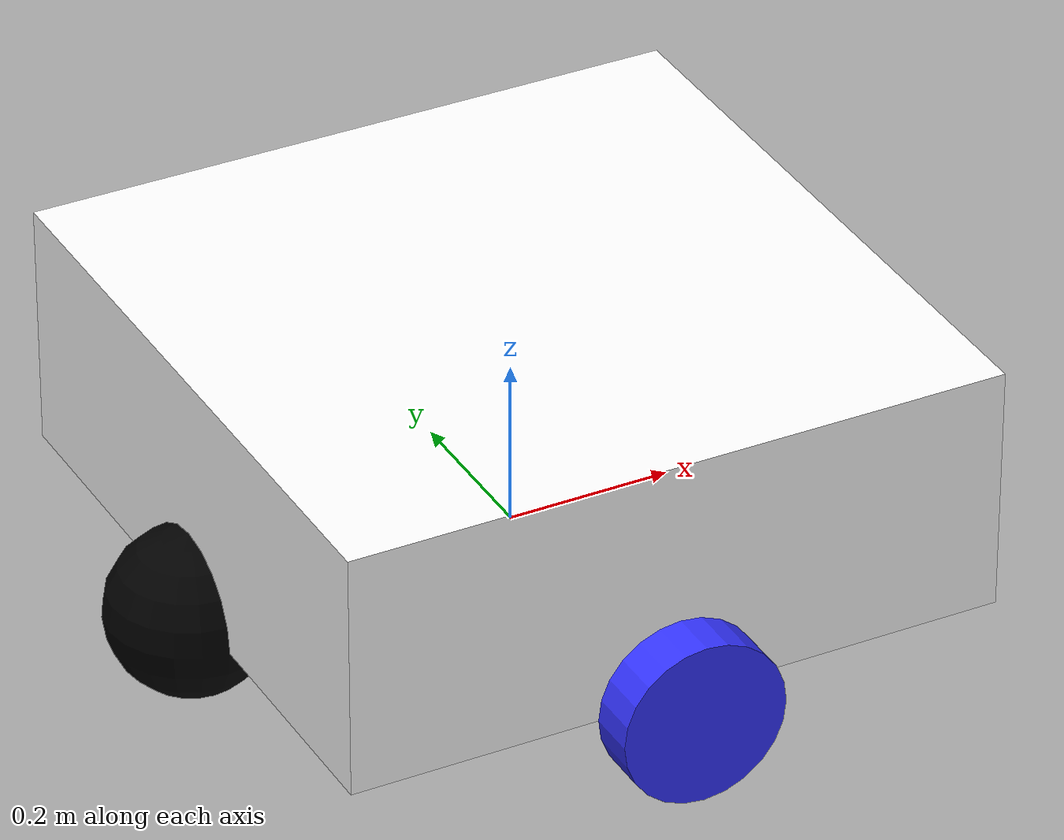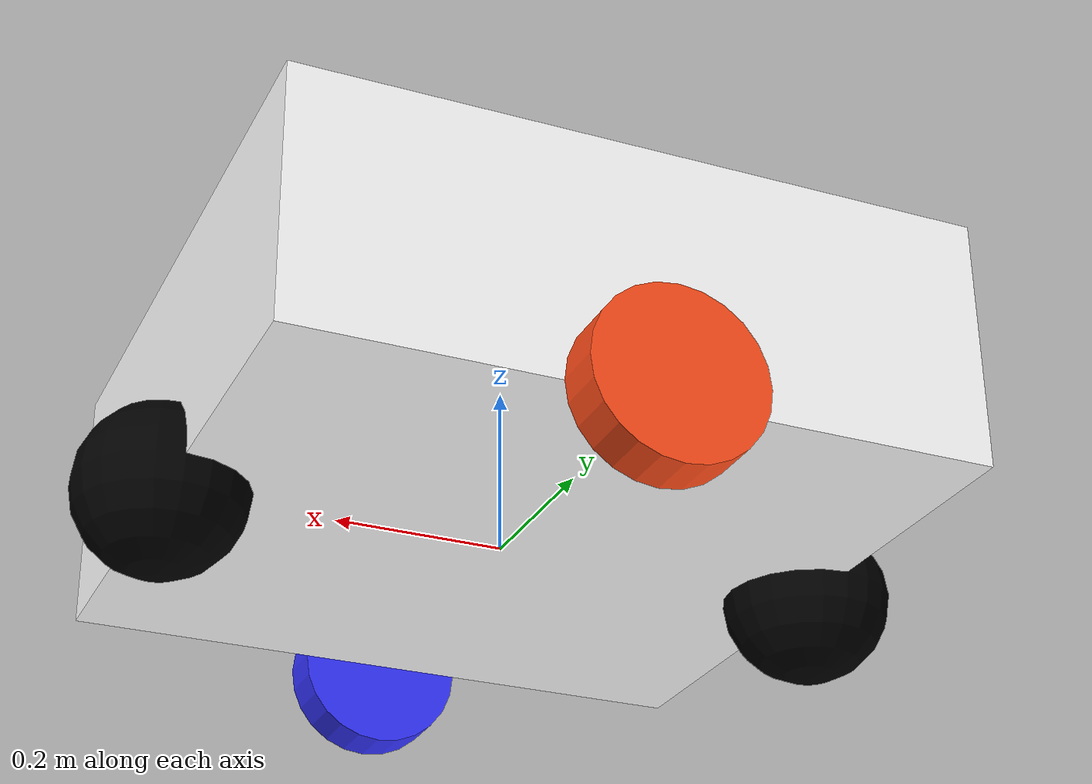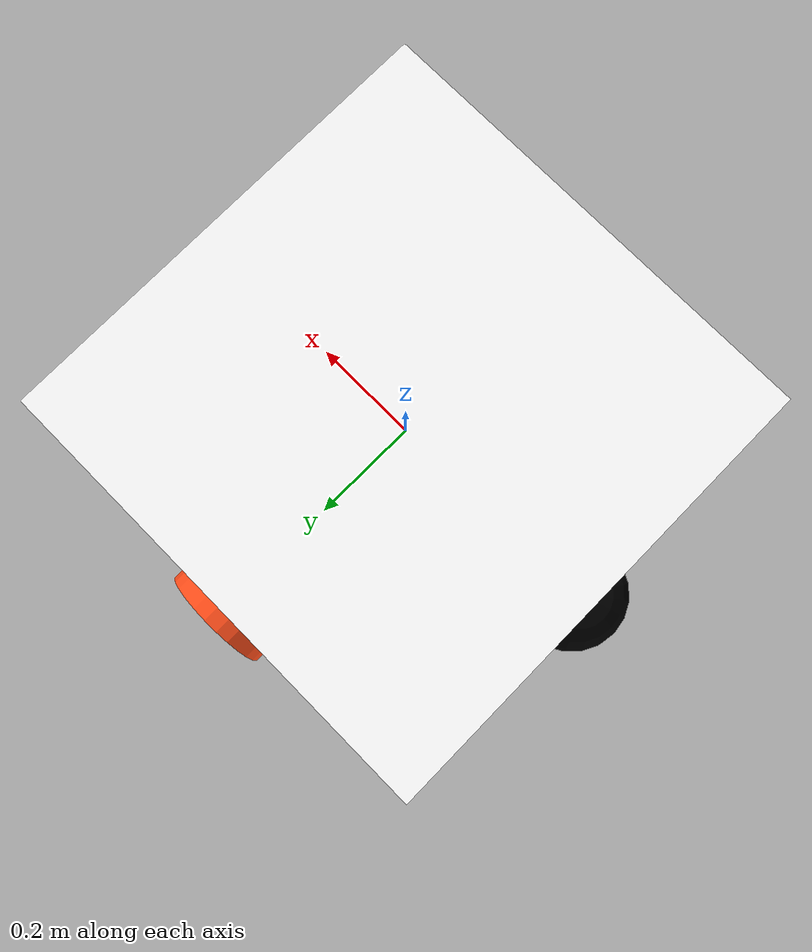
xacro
<?xml version="1.0"?>
<robot xmlns:xacro="http://www.ros.org/wiki/xacro">

    <xacro:include filename="inertial_macros.xacro" />
    <xacro:include filename="measurements.xacro" />

    <material name="white">
        <color rgba="1 1 1 1" />
    </material>

    <material name="black">
        <color rgba="0 0 0 1" />
    </material>

    <material name="orange">
        <color rgba="1 0.3 0.1 1" />
    </material>

    <material name="blue">
        <color rgba="0.2 0.2 1 1" />
    </material>

    <!-- BASE LINK-->

    <link name="base_link">

    </link>

    <!-- CHASSIS LINK-->

    <joint name="chassis_joint" type="fixed">
        <parent link="base_link" />
        <child link="chassis" />
        <origin xyz="0 0 ${chassis_height/2}" />
    </joint>

    <link name="chassis">
        <visual>
            <geometry>
                <box size="${chassis_length} ${chassis_width} ${chassis_height}" />
            </geometry>
            <material name="white" />
        </visual>
        <collision>
            <geometry>
                <box size="${chassis_length} ${chassis_width} ${chassis_height}" />
            </geometry>
        </collision>
        <xacro:inertial_box mass="${chassis_mass}" x="${chassis_length}" y="${chassis_width}" z="${chassis_height}">
            <origin xyz="0 0 0" rpy="0 0 0" />
        </xacro:inertial_box>
    </link>

    <!-- LEFT WHEEL LINK-->

    <joint name="left_wheel_joint" type="continuous">
        <parent link="base_link" />
        <child link="left_wheel" />
        <origin xyz="0 ${wheel_offset_y} 0" rpy="-${pi/2} 0 0" />
        <axis xyz="0 0 1" />
    </joint>

    <link name="left_wheel">
        <visual>
            <geometry>
                <cylinder radius="${wheel_radius}" length="${wheel_thickness}" />
            </geometry>
            <material name="orange" />
        </visual>
        <collision>
            <geometry>
                <cylinder radius="${wheel_radius}" length="${wheel_thickness}" />
            </geometry>
        </collision>
        <xacro:inertial_cylinder mass="${wheel_mass}" length="${wheel_thickness}" radius="${wheel_radius}">
            <origin xyz="0 0 0" rpy="0 0 0" />
        </xacro:inertial_cylinder>
    </link>

    <!-- RIGHT WHEEL LINK-->

    <joint name="right_wheel_joint" type="continuous">
        <parent link="base_link" />
        <child link="right_wheel" />
        <origin xyz="0 ${-wheel_offset_y} 0" rpy="${pi/2} 0 0" />
        <axis xyz="0 0 -1" />
    </joint>

    <link name="right_wheel">
        <visual>
            <geometry>
                <cylinder radius="${wheel_radius}" length="${wheel_thickness}" />
            </geometry>
            <material name="blue" />
        </visual>
        <collision>
            <geometry>
                <cylinder radius="${wheel_radius}" length="${wheel_thickness}" />
            </geometry>
        </collision>
        <xacro:inertial_cylinder mass="${wheel_mass}" length="${wheel_thickness}" radius="${wheel_radius}">
            <origin xyz="0 0 0" rpy="0 0 0" />
        </xacro:inertial_cylinder>
    </link>

    <!-- FRONT CASTER WHEEL LINK-->

    <joint name="front_caster_wheel_joint" type="fixed">
        <parent link="base_link" />
        <child link="front_caster_wheel" />
        <origin xyz="${caster_wheel_offset_x} 0 0" />
    </joint>

    <link name="front_caster_wheel">
        <visual>
            <geometry>
                <sphere radius="${caster_wheel_radius}" />
            </geometry>
            <material name="black" />
        </visual>
        <collision>
            <geometry>
                <sphere radius="${caster_wheel_radius}" />
            </geometry>
        </collision>
        <xacro:inertial_sphere mass="${caster_wheel_mass}" radius="${caster_wheel_radius}">
            <origin xyz="0 0 0" rpy="0 0 0" />
        </xacro:inertial_sphere>
    </link>

    <gazebo reference="front_caster_wheel">
        <collision>
            <surface>
                <friction>
                    <ode>
                        <mu>1.0</mu> <!-- value range 0.0 to 1.0 -->
                        <mu2>0.5</mu2> <!-- value range 0.0 to 1.0 -->
                    </ode>
                </friction>
            </surface>
        </collision>
    </gazebo>

    <!-- REAR CASTER WHEEL LINK-->

    <joint name="rear_caster_wheel_joint" type="fixed">
        <parent link="base_link" />
        <child link="rear_caster_wheel" />
        <origin xyz="${-caster_wheel_offset_x} 0 0" />
    </joint>

    <link name="rear_caster_wheel">
        <visual>
            <geometry>
                <sphere radius="${caster_wheel_radius}" />
            </geometry>
            <material name="black" />
        </visual>
        <collision>
            <geometry>
                <sphere radius="${caster_wheel_radius}" />
            </geometry>
        </collision>
        <xacro:inertial_sphere mass="${caster_wheel_mass}" radius="${caster_wheel_radius}">
            <origin xyz="0 0 0" rpy="0 0 0" />
        </xacro:inertial_sphere>
    </link>

    <gazebo reference="rear_caster_wheel">
        <collision>
            <surface>
                <friction>
                    <ode>
                        <mu>0.01</mu> <!-- value range 0.0 to 1.0 -->
                        <mu2>0.01</mu2> <!-- value range 0.0 to 1.0 -->
                    </ode>
                </friction>
            </surface>
        </collision>
    </gazebo>

</robot>

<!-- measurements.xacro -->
<robot xmlns:xacro="http://www.ros.org/wiki/xacro" >

    <xacro:property name="chassis_length" value="0.8"/>
    <xacro:property name="chassis_width" value="0.8"/>
    <xacro:property name="chassis_height" value="0.3"/>
    <xacro:property name="chassis_mass" value="0.4"/>
    <xacro:property name="wheel_radius" value="0.1"/>
    <xacro:property name="wheel_thickness" value="0.06"/>
    <xacro:property name="wheel_mass" value="0.5"/>
    <xacro:property name="wheel_offset_x" value="${chassis_length/2}"/>
    <xacro:property name="wheel_offset_y" value="${chassis_width/2 + wheel_thickness/2}"/>
    <xacro:property name="caster_wheel_radius" value="${wheel_radius}"/>
    <xacro:property name="caster_wheel_mass" value="0.05"/>
    <xacro:property name="caster_wheel_offset_x" value="${wheel_offset_x}"/>

</robot>
